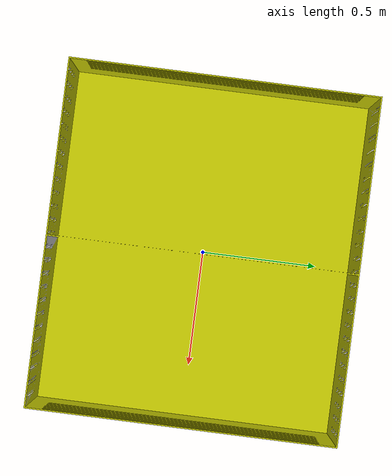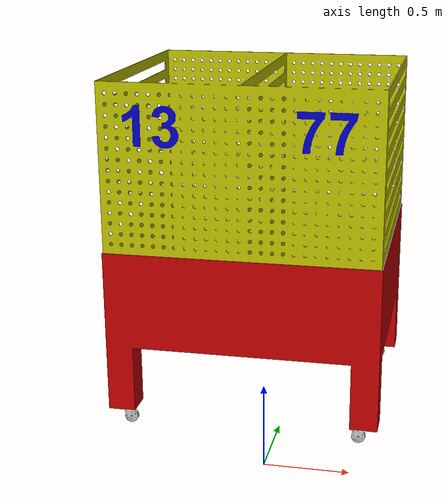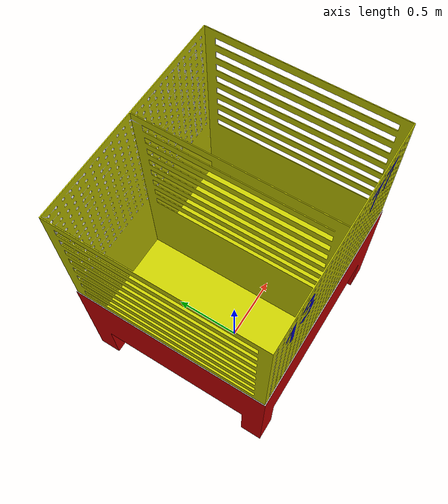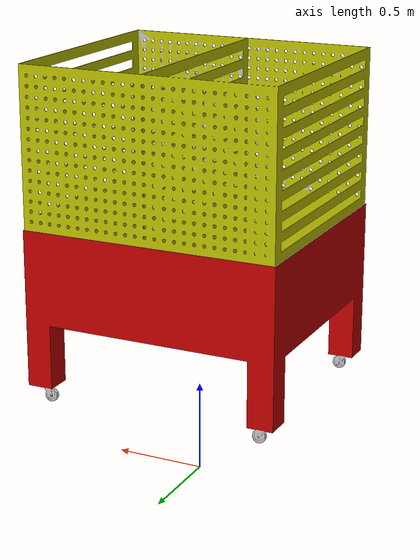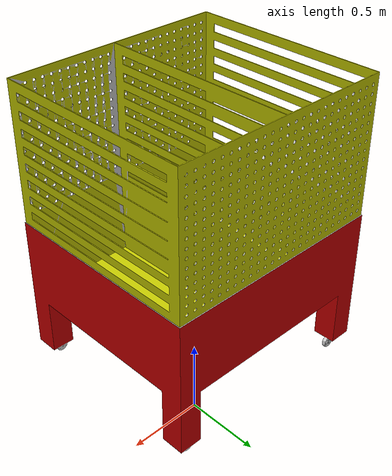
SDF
<?xml version="1.0" ?>
<sdf version="1.5">
  <model name="plot_factory_load">
     <static>true</static>
     <pose>0 0 0.6 0 0 0</pose>
     <link name="link">
      <collision name="collision">
        <geometry>
          <mesh>
            <uri>model://plot_factory_load/meshes/plotyuk.dae</uri>
          </mesh>
        </geometry>
      </collision>
      <visual name="visual">
        <geometry>
          <mesh>
            <uri>model://plot_factory_load/meshes/plotyuk.dae</uri>
          </mesh>
        </geometry>
      </visual>
    </link>
  </model>
</sdf>
